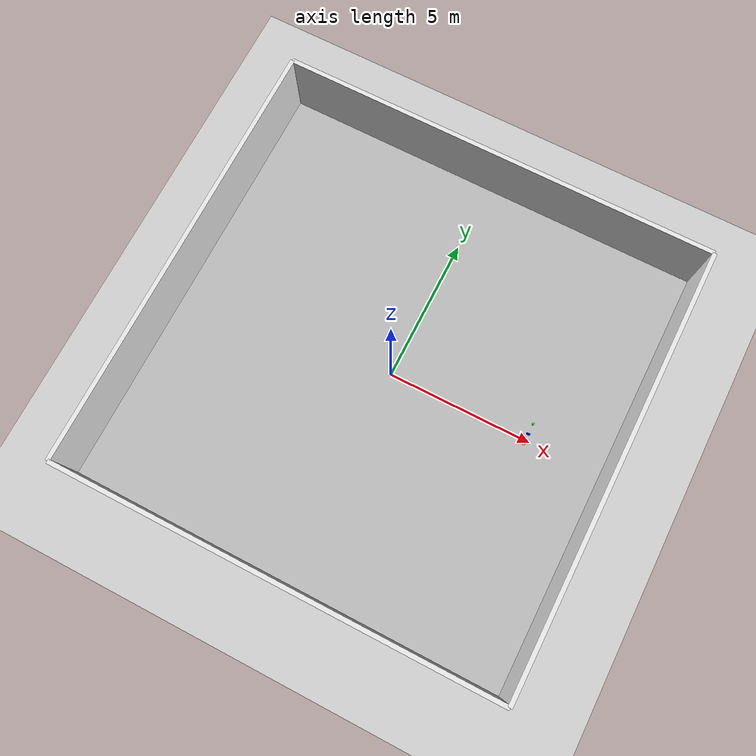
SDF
<sdf version="1.8">
 <world name="default">
  <physics name="2ms" type="ode">
   <max_step_size>0.002</max_step_size>
   <real_time_factor>1.0</real_time_factor>
   <real_time_update_rate>500</real_time_update_rate>
  </physics>
  <plugin filename="gz-sim-physics-system" name="gz::sim::systems::Physics"/>
  <plugin filename="gz-sim-user-commands-system" name="gz::sim::systems::UserCommands"/>
  <plugin filename="gz-sim-scene-broadcaster-system" name="gz::sim::systems::SceneBroadcaster"/>
  <plugin filename="gz-sim-sensors-system" name="gz::sim::systems::Sensors">
   <render_engine>ogre2</render_engine>
  </plugin>
  <plugin filename="gz-sim-contact-system" name="gz::sim::systems::Contact"/>
  <plugin filename="libgz_link_attacher.so" name="gz_link_attacher::LinkAttacher">
   <robot_model_name>mmo500</robot_model_name>
  </plugin>
  <scene>
   <ambient>0.4 0.4 0.4 1</ambient>
   <background>0.7 0.7 0.7 1</background>
   <shadows>false</shadows>
   <grid>false</grid>
  </scene>
  <light type="directional" name="sun">
   <cast_shadows>false</cast_shadows>
   <pose>0 0 10 0 0 0</pose>
   <diffuse>0.8 0.8 0.8 1</diffuse>
   <specular>0.2 0.2 0.2 1</specular>
   <direction>-0.5 0.1 -0.9</direction>
  </light>
  <model name="ground_plane">
   <static>true</static>
   <link name="link">
    <collision name="collision">
     <geometry><plane><normal>0 0 1</normal><size>100 100</size></plane></geometry>
    </collision>
    <visual name="visual">
     <geometry><plane><normal>0 0 1</normal><size>100 100</size></plane></geometry>
     <material>
      <ambient>0.8 0.8 0.8 1</ambient>
      <diffuse>0.8 0.8 0.8 1</diffuse>
      <specular>0.8 0.8 0.8 1</specular>
     </material>
    </visual>
   </link>
  </model>
  <model name="ground_logo">
   <static>true</static>
   <pose>0 0 0 0 0 1.57</pose>
   <link name="link">
    <visual name="visual">
     <pose>0 0 0.001 0 0 0</pose>
     <geometry>
      <mesh><scale>1.33 1.25 1</scale><uri>model://warehouse_floor/meshes/floor.dae</uri></mesh>
     </geometry>
    </visual>
   </link>
  </model>
  <model name="wall_north">
   <static>true</static>
   <pose>0 7.5 1.25 0 0 0</pose>
   <link name="link">
    <collision name="collision"><geometry><box><size>15 0.15 2.5</size></box></geometry></collision>
    <visual name="visual">
     <geometry><box><size>15 0.15 2.5</size></box></geometry>
     <material>
      <ambient>0.9 0.9 0.9 1</ambient>
      <diffuse>0.9 0.9 0.9 1</diffuse>
      <specular>0.1 0.1 0.1 1</specular>
     </material>
    </visual>
   </link>
  </model>
  <model name="wall_south">
   <static>true</static>
   <pose>0 -7.5 1.25 0 0 0</pose>
   <link name="link">
    <collision name="collision"><geometry><box><size>15 0.15 2.5</size></box></geometry></collision>
    <visual name="visual">
     <geometry><box><size>15 0.15 2.5</size></box></geometry>
     <material>
      <ambient>0.9 0.9 0.9 1</ambient>
      <diffuse>0.9 0.9 0.9 1</diffuse>
      <specular>0.1 0.1 0.1 1</specular>
     </material>
    </visual>
   </link>
  </model>
  <model name="wall_east">
   <static>true</static>
   <pose>7.5 0 1.25 0 0 1.57</pose>
   <link name="link">
    <collision name="collision"><geometry><box><size>15 0.15 2.5</size></box></geometry></collision>
    <visual name="visual">
     <geometry><box><size>15 0.15 2.5</size></box></geometry>
     <material>
      <ambient>0.9 0.9 0.9 1</ambient>
      <diffuse>0.9 0.9 0.9 1</diffuse>
      <specular>0.1 0.1 0.1 1</specular>
     </material>
    </visual>
   </link>
  </model>
  <model name="wall_west">
   <static>true</static>
   <pose>-7.5 0 1.25 0 0 1.57</pose>
   <link name="link">
    <collision name="collision"><geometry><box><size>15 0.15 2.5</size></box></geometry></collision>
    <visual name="visual">
     <geometry><box><size>15 0.15 2.5</size></box></geometry>
     <material>
      <ambient>0.9 0.9 0.9 1</ambient>
      <diffuse>0.9 0.9 0.9 1</diffuse>
      <specular>0.1 0.1 0.1 1</specular>
     </material>
    </visual>
   </link>
  </model>
  <model name="blue_box">
   <pose>4.8 0 1.035 0 0 0</pose>
   <link name="link">
    <inertial>
     <mass>0.05</mass>
     <inertia>
      <ixx>3.08e-05</ixx>
      <ixy>0</ixy>
      <ixz>0</ixz>
      <iyy>8.04e-05</iyy>
      <iyz>0</iyz>
      <izz>7.04e-05</izz>
     </inertia>
    </inertial>
    <collision name="collision"><geometry><box><size>0.12 0.05 0.07</size></box></geometry></collision>
    <visual name="visual">
     <geometry><box><size>0.12 0.05 0.07</size></box></geometry>
     <material><ambient>0 0 1 1</ambient><diffuse>0 0 1 1</diffuse><specular>0.5 0.5 0.5 1</specular></material>
    </visual>
   </link>
  </model>
  <model name="yellow_ball">
   <pose>4.8 -0.35 1.04 0 0 0</pose>
   <link name="link">
    <inertial>
     <mass>0.05</mass>
     <inertia>
      <ixx>3.20e-05</ixx>
      <ixy>0</ixy>
      <ixz>0</ixz>
      <iyy>3.20e-05</iyy>
      <iyz>0</iyz>
      <izz>3.20e-05</izz>
     </inertia>
    </inertial>
    <collision name="collision"><geometry><sphere><radius>0.04</radius></sphere></geometry></collision>
    <visual name="visual">
     <geometry><sphere><radius>0.04</radius></sphere></geometry>
     <material><ambient>1 1 0 1</ambient><diffuse>1 1 0 1</diffuse><specular>0.5 0.5 0.5 1</specular></material>
    </visual>
   </link>
  </model>
  <model name="green_cylinder">
   <pose>4.8 0.35 1.05 0 0 0</pose>
   <link name="link">
    <inertial>
     <mass>0.05</mass>
     <inertia>
      <ixx>6.17e-05</ixx>
      <ixy>0</ixy>
      <ixz>0</ixz>
      <iyy>6.17e-05</iyy>
      <iyz>0</iyz>
      <izz>4.00e-05</izz>
     </inertia>
    </inertial>
    <collision name="collision">
     <geometry><cylinder><radius>0.04</radius><length>0.1</length></cylinder></geometry>
    </collision>
    <visual name="visual">
     <geometry><cylinder><radius>0.04</radius><length>0.1</length></cylinder></geometry>
     <material><ambient>0 1 0 1</ambient><diffuse>0 1 0 1</diffuse><specular>0.5 0.5 0.5 1</specular></material>
    </visual>
   </link>
  </model>
 </world>
</sdf>
